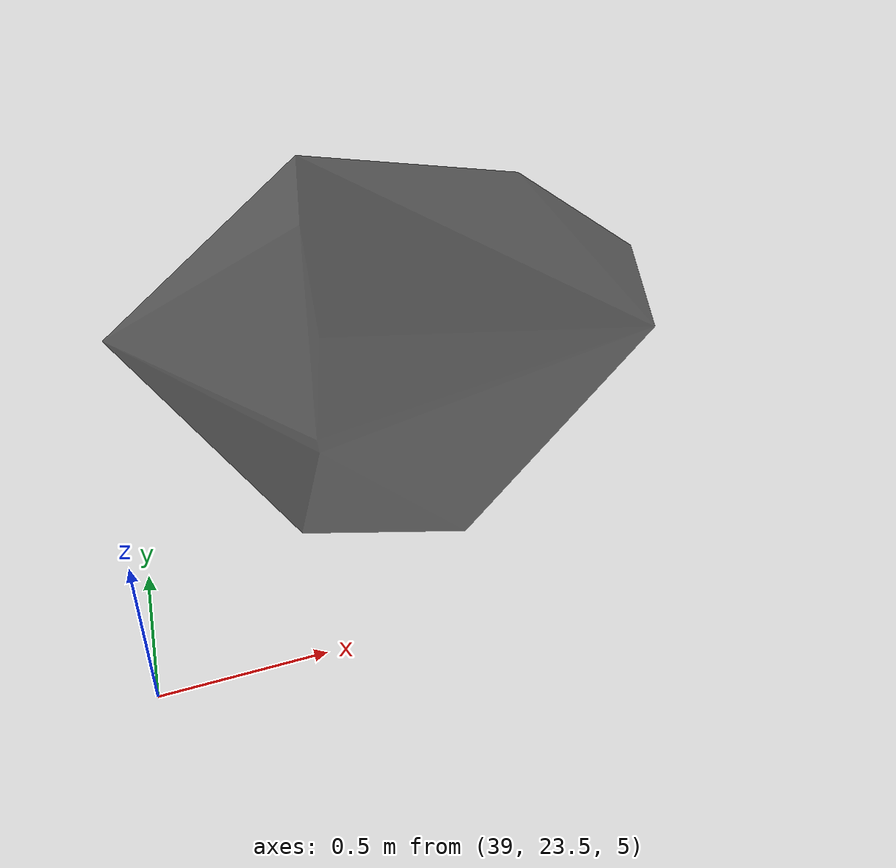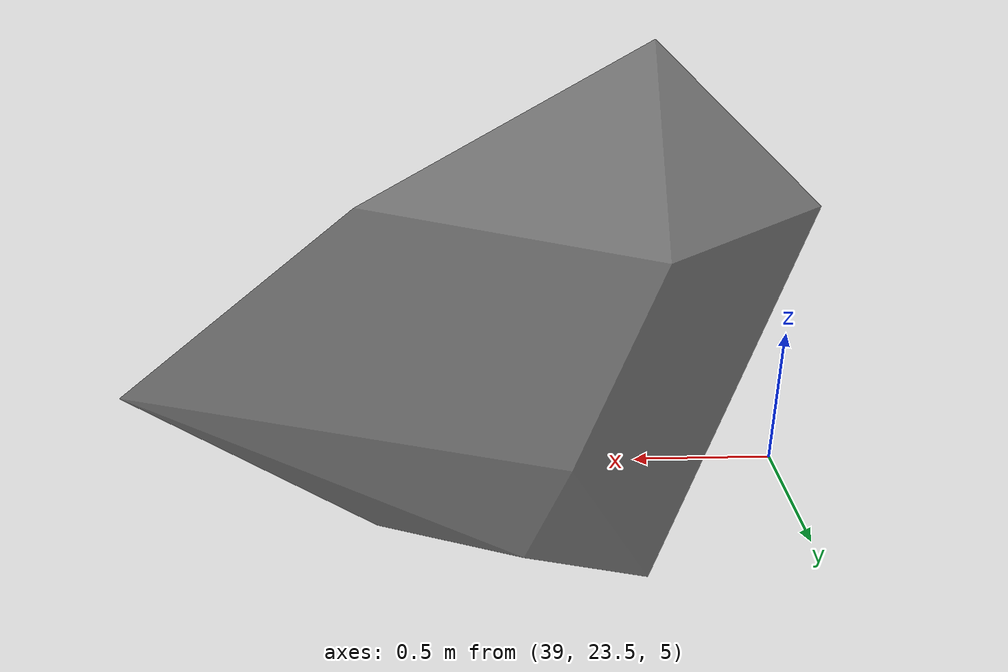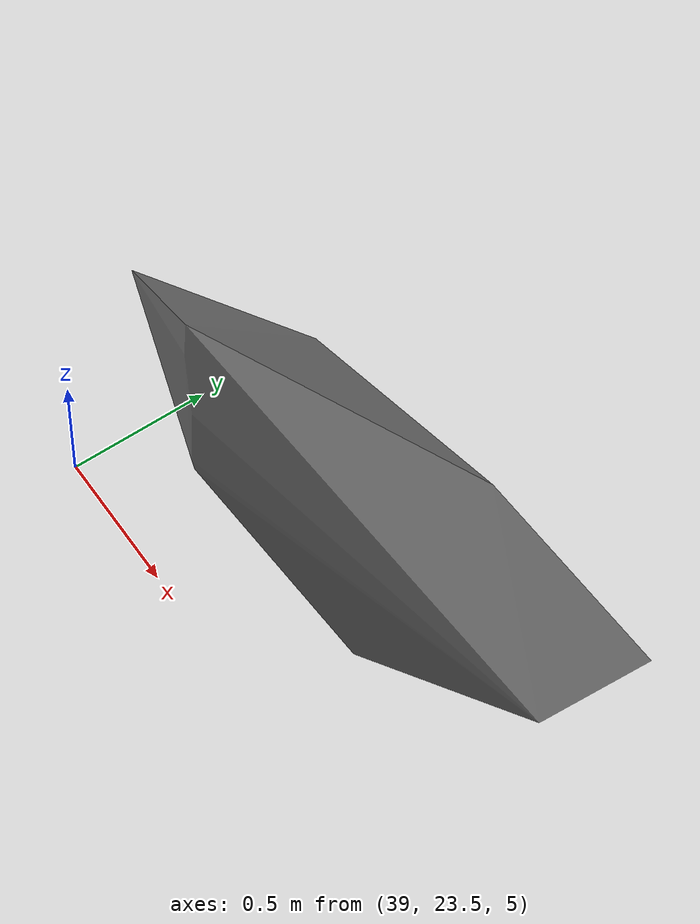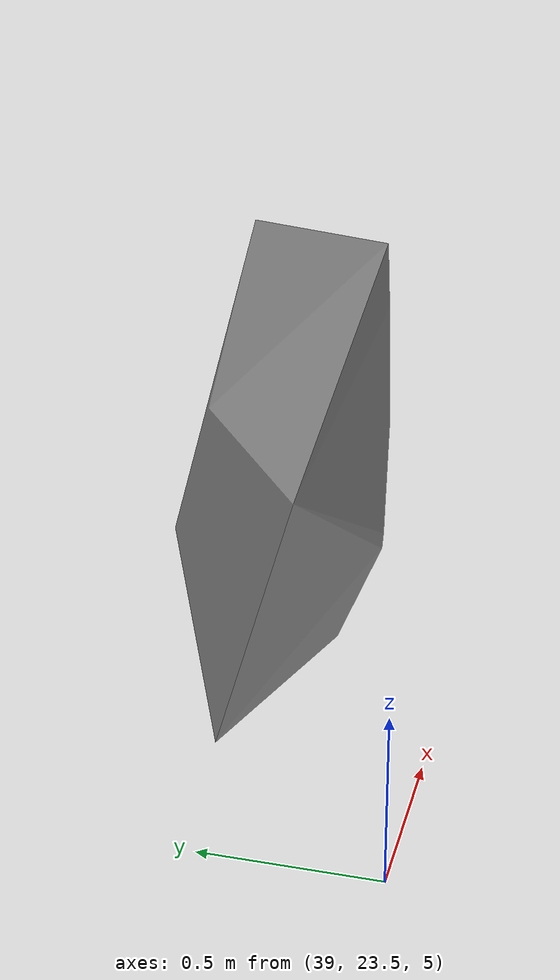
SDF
<sdf version="1.8">
 <model name="blue_mountains">
  <static>true</static>
  <link name="forest_23_22">
   <collision name="tree_14_trunk">
    <pose>39.90294 24.30181 2.938105 0 0 1.692907</pose>
    <geometry><cylinder><radius>0.0718479</radius><length>4.446132</length></cylinder></geometry>
   </collision>
   <collision name="plant_14_crown_0">
    <pose>39.90644 24.27329 0.7150393 0 0 1.692907</pose>
    <geometry>
     <mesh>
      <uri>model://blue_mountains/meshes/canopy_6_0.dae</uri>
      <scale>0.2873916 0.2873916 0.327734</scale>
     </mesh>
    </geometry>
   </collision>
   <collision name="plant_14_crown_1">
    <pose>39.90644 24.27329 0.7150393 0 0 1.692907</pose>
    <geometry>
     <mesh>
      <uri>model://blue_mountains/meshes/canopy_6_1.dae</uri>
      <scale>0.2873916 0.2873916 0.327734</scale>
     </mesh>
    </geometry>
   </collision>
   <collision name="tree_23_trunk">
    <pose>36.22172 23.55806 3.291813 0 0 2.840162</pose>
    <geometry><cylinder><radius>0.06581583</radius><length>3.547083</length></cylinder></geometry>
   </collision>
   <collision name="plant_23_crown_0">
    <pose>36.24686 23.55024 1.518272 0 0 2.840162</pose>
    <geometry>
     <mesh>
      <uri>model://blue_mountains/meshes/canopy_5_0.dae</uri>
      <scale>0.2632633 0.2632633 0.2666149</scale>
     </mesh>
    </geometry>
   </collision>
   <collision name="plant_23_crown_1">
    <pose>36.24686 23.55024 1.518272 0 0 2.840162</pose>
    <geometry>
     <mesh>
      <uri>model://blue_mountains/meshes/canopy_5_1.dae</uri>
      <scale>0.2632633 0.2632633 0.2666149</scale>
     </mesh>
    </geometry>
   </collision>
   <collision name="tree_66_trunk">
    <pose>37.71323 22.73704 2.28929 0 0 1.676737</pose>
    <geometry><cylinder><radius>0.04124311</radius><length>2.357047</length></cylinder></geometry>
   </collision>
   <collision name="plant_66_crown_0">
    <pose>37.71497 22.72063 1.110766 0 0 1.676737</pose>
    <geometry>
     <mesh>
      <uri>model://blue_mountains/meshes/canopy_7_0.dae</uri>
      <scale>0.1649724 0.1649724 0.1772178</scale>
     </mesh>
    </geometry>
   </collision>
   <collision name="plant_66_crown_1">
    <pose>37.71497 22.72063 1.110766 0 0 1.676737</pose>
    <geometry>
     <mesh>
      <uri>model://blue_mountains/meshes/canopy_7_1.dae</uri>
      <scale>0.1649724 0.1649724 0.1772178</scale>
     </mesh>
    </geometry>
   </collision>
   <collision name="tree_145_trunk">
    <pose>39.93508 22.96597 1.683386 0 0 1.659063</pose>
    <geometry><cylinder><radius>0.04301406</radius><length>2.043459</length></cylinder></geometry>
   </collision>
   <collision name="plant_145_crown_0">
    <pose>39.9366 22.94883 0.6616569 0 0 1.659063</pose>
    <geometry>
     <mesh>
      <uri>model://blue_mountains/meshes/canopy_5_0.dae</uri>
      <scale>0.1720563 0.1720563 0.1535957</scale>
     </mesh>
    </geometry>
   </collision>
   <collision name="plant_145_crown_1">
    <pose>39.9366 22.94883 0.6616569 0 0 1.659063</pose>
    <geometry>
     <mesh>
      <uri>model://blue_mountains/meshes/canopy_5_1.dae</uri>
      <scale>0.1720563 0.1720563 0.1535957</scale>
     </mesh>
    </geometry>
   </collision>
   <collision name="tree_163_trunk">
    <pose>37.40782 20.24234 2.758284 0 0 2.058008</pose>
    <geometry><cylinder><radius>0.05754419</radius><length>3.401177</length></cylinder></geometry>
   </collision>
   <collision name="plant_163_crown_0">
    <pose>37.41859 20.222 1.057695 0 0 2.058008</pose>
    <geometry>
     <mesh>
      <uri>model://blue_mountains/meshes/canopy_4_0.dae</uri>
      <scale>0.2301767 0.2301767 0.2534444</scale>
     </mesh>
    </geometry>
   </collision>
   <collision name="plant_163_crown_1">
    <pose>37.41859 20.222 1.057695 0 0 2.058008</pose>
    <geometry>
     <mesh>
      <uri>model://blue_mountains/meshes/canopy_4_1.dae</uri>
      <scale>0.2301767 0.2301767 0.2534444</scale>
     </mesh>
    </geometry>
   </collision>
   <collision name="tree_214_trunk">
    <pose>36.85274 24.31638 2.68467 0 0 -1.272514</pose>
    <geometry><cylinder><radius>0.05188956</radius><length>2.602626</length></cylinder></geometry>
   </collision>
   <collision name="plant_214_crown_0">
    <pose>36.84664 24.33622 1.383357 0 0 -1.272514</pose>
    <geometry>
     <mesh>
      <uri>model://blue_mountains/meshes/canopy_4_0.dae</uri>
      <scale>0.2075582 0.2075582 0.193939</scale>
     </mesh>
    </geometry>
   </collision>
   <collision name="plant_214_crown_1">
    <pose>36.84664 24.33622 1.383357 0 0 -1.272514</pose>
    <geometry>
     <mesh>
      <uri>model://blue_mountains/meshes/canopy_4_1.dae</uri>
      <scale>0.2075582 0.2075582 0.193939</scale>
     </mesh>
    </geometry>
   </collision>
   <collision name="tree_261_trunk">
    <pose>37.7217 23.20748 2.517104 0 0 -1.30272</pose>
    <geometry><cylinder><radius>0.05260989</radius><length>2.773469</length></cylinder></geometry>
   </collision>
   <collision name="plant_261_crown_0">
    <pose>37.71613 23.22777 1.13037 0 0 -1.30272</pose>
    <geometry>
     <mesh>
      <uri>model://blue_mountains/meshes/canopy_0_0.dae</uri>
      <scale>0.2104396 0.2104396 0.2045418</scale>
     </mesh>
    </geometry>
   </collision>
   <collision name="plant_261_crown_1">
    <pose>37.71613 23.22777 1.13037 0 0 -1.30272</pose>
    <geometry>
     <mesh>
      <uri>model://blue_mountains/meshes/canopy_0_1.dae</uri>
      <scale>0.2104396 0.2104396 0.2045418</scale>
     </mesh>
    </geometry>
   </collision>
   <collision name="tree_421_trunk">
    <pose>38.00448 26.16956 3.090982 0 0 1.884564</pose>
    <geometry><cylinder><radius>0.06366583</radius><length>3.928369</length></cylinder></geometry>
   </collision>
   <collision name="plant_421_crown_0">
    <pose>38.01234 26.14533 1.126797 0 0 1.884564</pose>
    <geometry>
     <mesh>
      <uri>model://blue_mountains/meshes/canopy_3_0.dae</uri>
      <scale>0.2546633 0.2546633 0.292056</scale>
     </mesh>
    </geometry>
   </collision>
   <collision name="plant_421_crown_1">
    <pose>38.01234 26.14533 1.126797 0 0 1.884564</pose>
    <geometry>
     <mesh>
      <uri>model://blue_mountains/meshes/canopy_3_1.dae</uri>
      <scale>0.2546633 0.2546633 0.292056</scale>
     </mesh>
    </geometry>
   </collision>
   <collision name="tree_451_trunk">
    <pose>39.56026 27.1964 1.891901 0 0 1.526291</pose>
    <geometry><cylinder><radius>0.04152364</radius><length>2.171674</length></cylinder></geometry>
   </collision>
   <collision name="plant_451_crown_0">
    <pose>39.55952 27.1798 0.8060646 0 0 1.526291</pose>
    <geometry>
     <mesh>
      <uri>model://blue_mountains/meshes/canopy_5_0.dae</uri>
      <scale>0.1660946 0.1660946 0.1632329</scale>
     </mesh>
    </geometry>
   </collision>
   <collision name="plant_451_crown_1">
    <pose>39.55952 27.1798 0.8060646 0 0 1.526291</pose>
    <geometry>
     <mesh>
      <uri>model://blue_mountains/meshes/canopy_5_1.dae</uri>
      <scale>0.1660946 0.1660946 0.1632329</scale>
     </mesh>
    </geometry>
   </collision>
   <collision name="plant_474_crown_0">
    <pose>33.36073 25.72692 3.005857 0 0 0</pose>
    <geometry>
     <mesh>
      <uri>model://blue_mountains/meshes/canopy_13_0.dae</uri>
      <scale>0.07575656 0.07575656 0.06926315</scale>
     </mesh>
    </geometry>
   </collision>
   <collision name="plant_474_crown_1">
    <pose>33.36073 25.72692 3.005857 0 0 0</pose>
    <geometry>
     <mesh>
      <uri>model://blue_mountains/meshes/canopy_13_1.dae</uri>
      <scale>0.07575656 0.07575656 0.06926315</scale>
     </mesh>
    </geometry>
   </collision>
   <collision name="plant_479_crown_0">
    <pose>32.83662 25.67525 3.20218 0 0 0</pose>
    <geometry>
     <mesh>
      <uri>model://blue_mountains/meshes/canopy_11_0.dae</uri>
      <scale>0.07575656 0.07575656 0.06926315</scale>
     </mesh>
    </geometry>
   </collision>
   <collision name="plant_479_crown_1">
    <pose>32.83662 25.67525 3.20218 0 0 0</pose>
    <geometry>
     <mesh>
      <uri>model://blue_mountains/meshes/canopy_11_1.dae</uri>
      <scale>0.07575656 0.07575656 0.06926315</scale>
     </mesh>
    </geometry>
   </collision>
   <collision name="plant_481_crown_0">
    <pose>33.6655 28.56761 2.884346 0 0 0</pose>
    <geometry>
     <mesh>
      <uri>model://blue_mountains/meshes/canopy_13_0.dae</uri>
      <scale>0.07575656 0.07575656 0.06926315</scale>
     </mesh>
    </geometry>
   </collision>
   <collision name="plant_481_crown_1">
    <pose>33.6655 28.56761 2.884346 0 0 0</pose>
    <geometry>
     <mesh>
      <uri>model://blue_mountains/meshes/canopy_13_1.dae</uri>
      <scale>0.07575656 0.07575656 0.06926315</scale>
     </mesh>
    </geometry>
   </collision>
   <collision name="plant_485_crown_0">
    <pose>30.30019 24.53971 4.105222 0 0 0</pose>
    <geometry>
     <mesh>
      <uri>model://blue_mountains/meshes/canopy_9_0.dae</uri>
      <scale>0.07575656 0.07575656 0.06926315</scale>
     </mesh>
    </geometry>
   </collision>
   <collision name="plant_485_crown_1">
    <pose>30.30019 24.53971 4.105222 0 0 0</pose>
    <geometry>
     <mesh>
      <uri>model://blue_mountains/meshes/canopy_9_1.dae</uri>
      <scale>0.07575656 0.07575656 0.06926315</scale>
     </mesh>
    </geometry>
   </collision>
   <collision name="plant_490_crown_0">
    <pose>32.14999 29.77648 3.422054 0 0 0</pose>
    <geometry>
     <mesh>
      <uri>model://blue_mountains/meshes/canopy_16_0.dae</uri>
      <scale>0.07575656 0.07575656 0.06926315</scale>
     </mesh>
    </geometry>
   </collision>
   <collision name="plant_490_crown_1">
    <pose>32.14999 29.77648 3.422054 0 0 0</pose>
    <geometry>
     <mesh>
      <uri>model://blue_mountains/meshes/canopy_16_1.dae</uri>
      <scale>0.07575656 0.07575656 0.06926315</scale>
     </mesh>
    </geometry>
   </collision>
   <collision name="plant_497_crown_0">
    <pose>33.14374 29.88171 3.002787 0 0 0</pose>
    <geometry>
     <mesh>
      <uri>model://blue_mountains/meshes/canopy_13_0.dae</uri>
      <scale>0.07575656 0.07575656 0.06926315</scale>
     </mesh>
    </geometry>
   </collision>
   <collision name="plant_497_crown_1">
    <pose>33.14374 29.88171 3.002787 0 0 0</pose>
    <geometry>
     <mesh>
      <uri>model://blue_mountains/meshes/canopy_13_1.dae</uri>
      <scale>0.07575656 0.07575656 0.06926315</scale>
     </mesh>
    </geometry>
   </collision>
   <collision name="plant_498_crown_0">
    <pose>34.64641 26.61608 2.557695 0 0 0</pose>
    <geometry>
     <mesh>
      <uri>model://blue_mountains/meshes/canopy_14_0.dae</uri>
      <scale>0.07575656 0.07575656 0.06926315</scale>
     </mesh>
    </geometry>
   </collision>
   <collision name="plant_498_crown_1">
    <pose>34.64641 26.61608 2.557695 0 0 0</pose>
    <geometry>
     <mesh>
      <uri>model://blue_mountains/meshes/canopy_14_1.dae</uri>
      <scale>0.07575656 0.07575656 0.06926315</scale>
     </mesh>
    </geometry>
   </collision>
   <collision name="plant_499_crown_0">
    <pose>31.63517 24.35132 3.583886 0 0 0</pose>
    <geometry>
     <mesh>
      <uri>model://blue_mountains/meshes/canopy_16_0.dae</uri>
      <scale>0.07575656 0.07575656 0.06926315</scale>
     </mesh>
    </geometry>
   </collision>
   <collision name="plant_499_crown_1">
    <pose>31.63517 24.35132 3.583886 0 0 0</pose>
    <geometry>
     <mesh>
      <uri>model://blue_mountains/meshes/canopy_16_1.dae</uri>
      <scale>0.07575656 0.07575656 0.06926315</scale>
     </mesh>
    </geometry>
   </collision>
   <collision name="plant_506_crown_0">
    <pose>33.25719 29.03894 3.02039 0 0 0</pose>
    <geometry>
     <mesh>
      <uri>model://blue_mountains/meshes/canopy_14_0.dae</uri>
      <scale>0.07575656 0.07575656 0.06926315</scale>
     </mesh>
    </geometry>
   </collision>
   <collision name="plant_506_crown_1">
    <pose>33.25719 29.03894 3.02039 0 0 0</pose>
    <geometry>
     <mesh>
      <uri>model://blue_mountains/meshes/canopy_14_1.dae</uri>
      <scale>0.07575656 0.07575656 0.06926315</scale>
     </mesh>
    </geometry>
   </collision>
   <collision name="plant_515_crown_0">
    <pose>34.13381 26.55199 2.737088 0 0 0</pose>
    <geometry>
     <mesh>
      <uri>model://blue_mountains/meshes/canopy_16_0.dae</uri>
      <scale>0.07575656 0.07575656 0.06926315</scale>
     </mesh>
    </geometry>
   </collision>
   <collision name="plant_515_crown_1">
    <pose>34.13381 26.55199 2.737088 0 0 0</pose>
    <geometry>
     <mesh>
      <uri>model://blue_mountains/meshes/canopy_16_1.dae</uri>
      <scale>0.07575656 0.07575656 0.06926315</scale>
     </mesh>
    </geometry>
   </collision>
   <collision name="plant_525_crown_0">
    <pose>34.61549 26.23357 2.56616 0 0 0</pose>
    <geometry>
     <mesh>
      <uri>model://blue_mountains/meshes/canopy_11_0.dae</uri>
      <scale>0.07575656 0.07575656 0.06926315</scale>
     </mesh>
    </geometry>
   </collision>
   <collision name="plant_525_crown_1">
    <pose>34.61549 26.23357 2.56616 0 0 0</pose>
    <geometry>
     <mesh>
      <uri>model://blue_mountains/meshes/canopy_11_1.dae</uri>
      <scale>0.07575656 0.07575656 0.06926315</scale>
     </mesh>
    </geometry>
   </collision>
   <collision name="plant_746_crown_0">
    <pose>34.46275 26.99791 18.33561 0 0 -0.3421438</pose>
    <geometry>
     <mesh>
      <uri>model://blue_mountains/meshes/canopy_9_0.dae</uri>
      <scale>0.05725039 0.05725039 0.04122028</scale>
     </mesh>
    </geometry>
   </collision>
   <collision name="plant_746_crown_1">
    <pose>34.46275 26.99791 18.33561 0 0 -0.3421438</pose>
    <geometry>
     <mesh>
      <uri>model://blue_mountains/meshes/canopy_9_1.dae</uri>
      <scale>0.05725039 0.05725039 0.04122028</scale>
     </mesh>
    </geometry>
   </collision>
   <collision name="plant_751_crown_0">
    <pose>31.13517 23.95358 16.82048 0 0 2.239782</pose>
    <geometry>
     <mesh>
      <uri>model://blue_mountains/meshes/canopy_14_0.dae</uri>
      <scale>0.04475822 0.04475822 0.03222592</scale>
     </mesh>
    </geometry>
   </collision>
   <collision name="plant_751_crown_1">
    <pose>31.13517 23.95358 16.82048 0 0 2.239782</pose>
    <geometry>
     <mesh>
      <uri>model://blue_mountains/meshes/canopy_14_1.dae</uri>
      <scale>0.04475822 0.04475822 0.03222592</scale>
     </mesh>
    </geometry>
   </collision>
   <collision name="plant_760_crown_0">
    <pose>30.32626 24.33149 20.71653 0 0 -0.276788</pose>
    <geometry>
     <mesh>
      <uri>model://blue_mountains/meshes/canopy_14_0.dae</uri>
      <scale>0.03593081 0.03593081 0.02587018</scale>
     </mesh>
    </geometry>
   </collision>
   <collision name="plant_760_crown_1">
    <pose>30.32626 24.33149 20.71653 0 0 -0.276788</pose>
    <geometry>
     <mesh>
      <uri>model://blue_mountains/meshes/canopy_14_1.dae</uri>
      <scale>0.03593081 0.03593081 0.02587018</scale>
     </mesh>
    </geometry>
   </collision>
   <collision name="plant_770_crown_0">
    <pose>31.29473 23.76462 15.73824 0 0 1.559713</pose>
    <geometry>
     <mesh>
      <uri>model://blue_mountains/meshes/canopy_16_0.dae</uri>
      <scale>0.06743522 0.06743522 0.04855336</scale>
     </mesh>
    </geometry>
   </collision>
   <collision name="plant_770_crown_1">
    <pose>31.29473 23.76462 15.73824 0 0 1.559713</pose>
    <geometry>
     <mesh>
      <uri>model://blue_mountains/meshes/canopy_16_1.dae</uri>
      <scale>0.06743522 0.06743522 0.04855336</scale>
     </mesh>
    </geometry>
   </collision>
   <collision name="plant_772_crown_0">
    <pose>33.19003 27.12388 20.71653 0 0 1.897914</pose>
    <geometry>
     <mesh>
      <uri>model://blue_mountains/meshes/canopy_15_0.dae</uri>
      <scale>0.05446116 0.05446116 0.03921204</scale>
     </mesh>
    </geometry>
   </collision>
   <collision name="plant_772_crown_1">
    <pose>33.19003 27.12388 20.71653 0 0 1.897914</pose>
    <geometry>
     <mesh>
      <uri>model://blue_mountains/meshes/canopy_15_1.dae</uri>
      <scale>0.05446116 0.05446116 0.03921204</scale>
     </mesh>
    </geometry>
   </collision>
   <collision name="plant_778_crown_0">
    <pose>30.32626 24.33149 20.71653 0 0 -2.132916</pose>
    <geometry>
     <mesh>
      <uri>model://blue_mountains/meshes/canopy_14_0.dae</uri>
      <scale>0.03982094 0.03982094 0.02867108</scale>
     </mesh>
    </geometry>
   </collision>
   <collision name="plant_778_crown_1">
    <pose>30.32626 24.33149 20.71653 0 0 -2.132916</pose>
    <geometry>
     <mesh>
      <uri>model://blue_mountains/meshes/canopy_14_1.dae</uri>
      <scale>0.03982094 0.03982094 0.02867108</scale>
     </mesh>
    </geometry>
   </collision>
   <collision name="plant_780_crown_0">
    <pose>31.29473 23.76462 15.73824 0 0 -1.784394</pose>
    <geometry>
     <mesh>
      <uri>model://blue_mountains/meshes/canopy_17_0.dae</uri>
      <scale>0.06553345 0.06553345 0.04718409</scale>
     </mesh>
    </geometry>
   </collision>
   <collision name="plant_780_crown_1">
    <pose>31.29473 23.76462 15.73824 0 0 -1.784394</pose>
    <geometry>
     <mesh>
      <uri>model://blue_mountains/meshes/canopy_17_1.dae</uri>
      <scale>0.06553345 0.06553345 0.04718409</scale>
     </mesh>
    </geometry>
   </collision>
   <collision name="plant_781_crown_0">
    <pose>32.49718 25.04954 20.71653 0 0 2.510359</pose>
    <geometry>
     <mesh>
      <uri>model://blue_mountains/meshes/canopy_15_0.dae</uri>
      <scale>0.0411818 0.0411818 0.02965089</scale>
     </mesh>
    </geometry>
   </collision>
   <collision name="plant_781_crown_1">
    <pose>32.49718 25.04954 20.71653 0 0 2.510359</pose>
    <geometry>
     <mesh>
      <uri>model://blue_mountains/meshes/canopy_15_1.dae</uri>
      <scale>0.0411818 0.0411818 0.02965089</scale>
     </mesh>
    </geometry>
   </collision>
   <collision name="plant_797_crown_0">
    <pose>32.49718 25.04954 20.71653 0 0 -2.97494</pose>
    <geometry>
     <mesh>
      <uri>model://blue_mountains/meshes/canopy_16_0.dae</uri>
      <scale>0.04995706 0.04995706 0.03596908</scale>
     </mesh>
    </geometry>
   </collision>
   <collision name="plant_797_crown_1">
    <pose>32.49718 25.04954 20.71653 0 0 -2.97494</pose>
    <geometry>
     <mesh>
      <uri>model://blue_mountains/meshes/canopy_16_1.dae</uri>
      <scale>0.04995706 0.04995706 0.03596908</scale>
     </mesh>
    </geometry>
   </collision>
   <collision name="plant_798_crown_0">
    <pose>30.32626 24.33149 20.71653 0 0 1.997573</pose>
    <geometry>
     <mesh>
      <uri>model://blue_mountains/meshes/canopy_17_0.dae</uri>
      <scale>0.06075395 0.06075395 0.04374284</scale>
     </mesh>
    </geometry>
   </collision>
   <collision name="plant_798_crown_1">
    <pose>30.32626 24.33149 20.71653 0 0 1.997573</pose>
    <geometry>
     <mesh>
      <uri>model://blue_mountains/meshes/canopy_17_1.dae</uri>
      <scale>0.06075395 0.06075395 0.04374284</scale>
     </mesh>
    </geometry>
   </collision>
   <collision name="plant_799_crown_0">
    <pose>31.29473 23.76462 15.73824 0 0 -0.9840969</pose>
    <geometry>
     <mesh>
      <uri>model://blue_mountains/meshes/canopy_15_0.dae</uri>
      <scale>0.04382779 0.04382779 0.03155601</scale>
     </mesh>
    </geometry>
   </collision>
   <collision name="plant_799_crown_1">
    <pose>31.29473 23.76462 15.73824 0 0 -0.9840969</pose>
    <geometry>
     <mesh>
      <uri>model://blue_mountains/meshes/canopy_15_1.dae</uri>
      <scale>0.04382779 0.04382779 0.03155601</scale>
     </mesh>
    </geometry>
   </collision>
   <visual name="forest_visual">
    <geometry><mesh><uri>model://blue_mountains/meshes/forest_23_22.dae</uri></mesh></geometry>
    <cast_shadows>false</cast_shadows>
   </visual>
  </link>
 </model>
</sdf>
